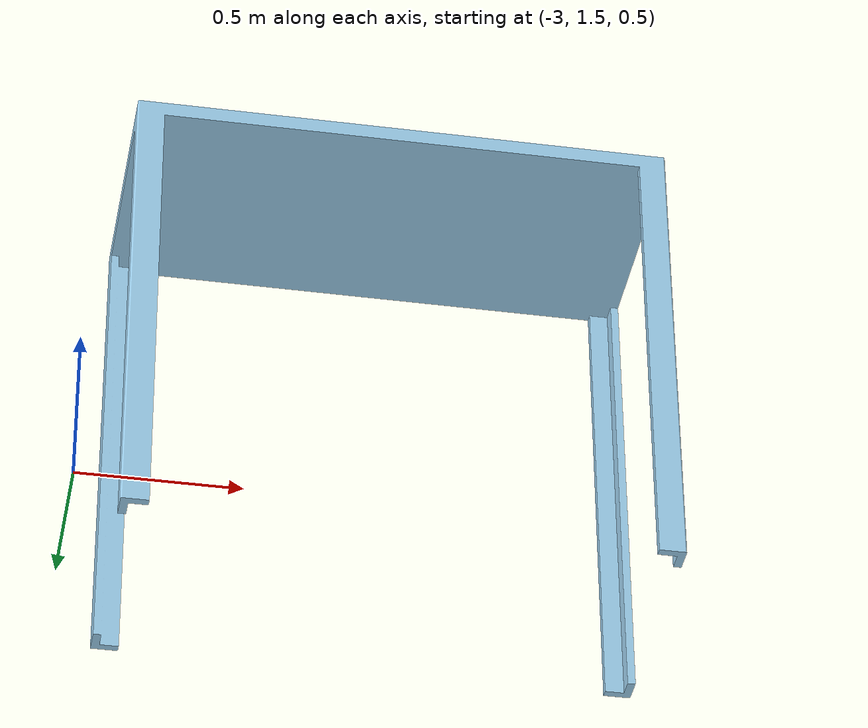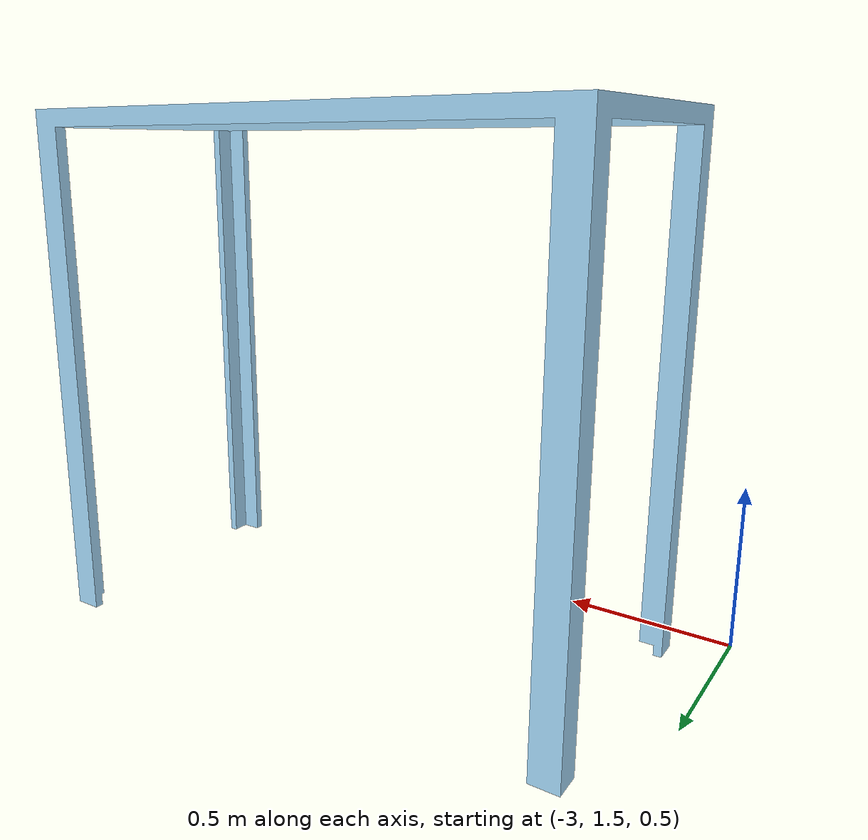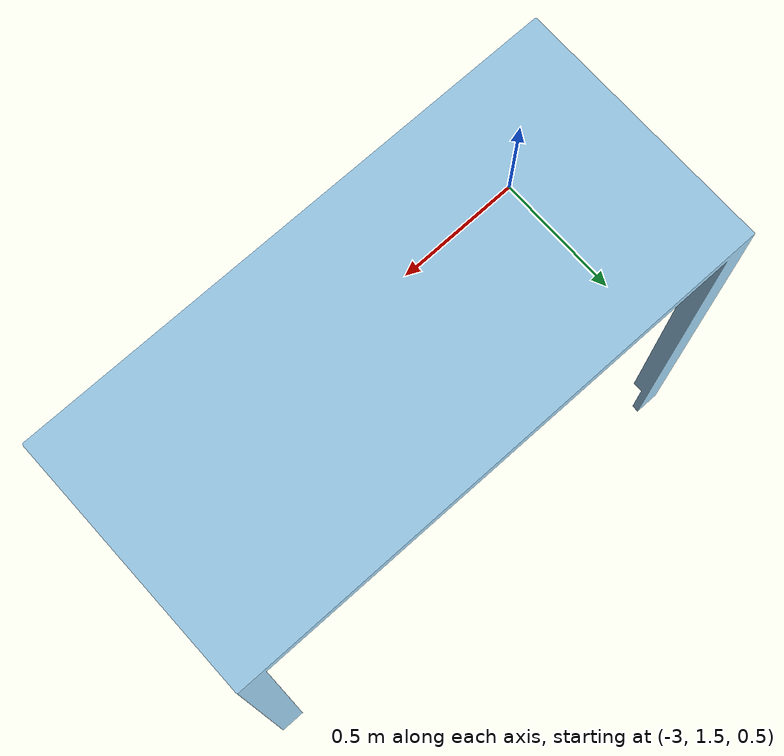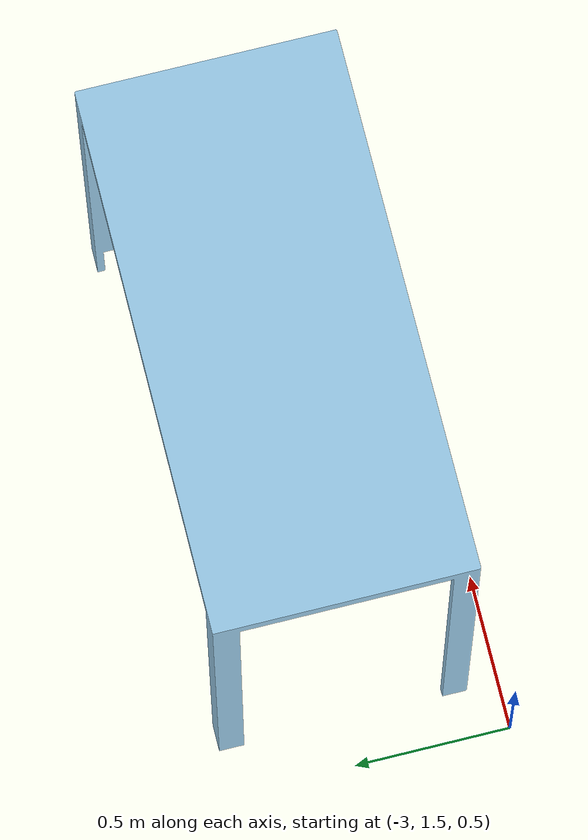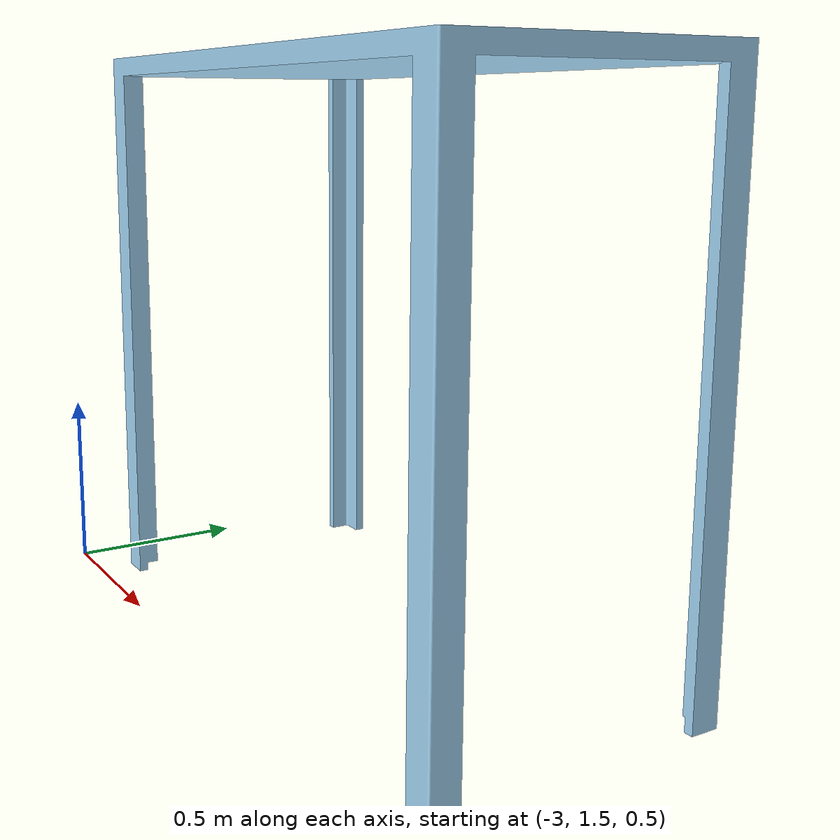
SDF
<?xml version='1.0' ?>
<sdf version='1.6'>
  <model name="table_challenge">
    <pose>-2 2 2 0 0 0</pose>
    <static>1</static>
    <link name="building_structures">
      <visual name="visual">
        <geometry>
          <mesh><uri>file://table_challenge/mesh/table.dae</uri></mesh>
        </geometry>
      </visual>
      <collision name='collision'>
        <geometry>
          <mesh>
            <uri>file://table_challenge/mesh/table.dae</uri>
          </mesh>
        </geometry>
        <surface>
          <bounce/>
          <friction>
            <ode/>
          </friction>
          <contact>
            <ode/>
          </contact>
        </surface>
      </collision>
      <gravity>1</gravity>
    </link>
  </model>
</sdf>
